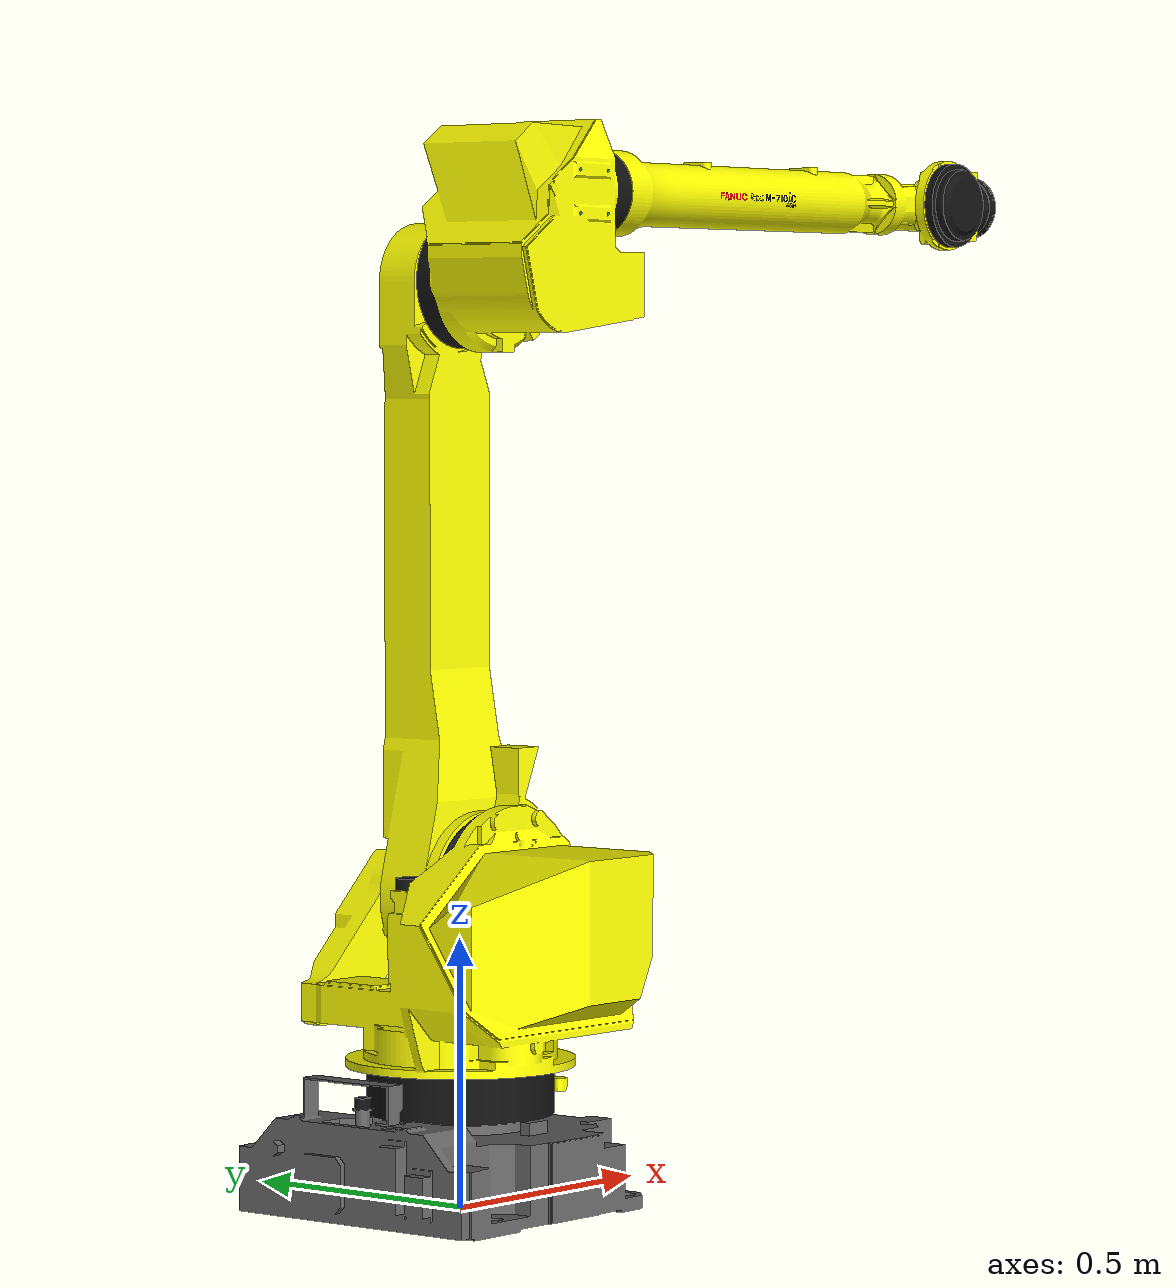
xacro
<?xml version="1.0" ?>
<robot name="m710ic_45m" xmlns:xacro="http://wiki.ros.org/xacro">
  <xacro:include
    filename="$(find fanuc_m710_description)/urdf/m710ic_45m_urdf_macro.xacro"
  />

  <link name="world" />
  <link name="ee_link" />
  <xacro:m710ic_45m parent="world" child="ee_link">
    <origin xyz="0 0 0" rpy="0 0 0" />
  </xacro:m710ic_45m>
</robot>

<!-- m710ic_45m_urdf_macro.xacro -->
<!--
SPDX-FileCopyrightText: 2026, FANUC America Corporation
SPDX-FileCopyrightText: 2026, FANUC CORPORATION
SPDX-License-Identifier: Apache-2.0
-->
<!-- URDF for M-710iC/45M -->
<robot xmlns:xacro="http://wiki.ros.org/xacro">
  <xacro:macro
    name="m710ic_45m"
    params="prefix=''
            parent
            *origin
            child"
  >

    <xacro:property name="j1_lower_limit" value="${radians(-180)}" />
    <xacro:property name="j2_lower_limit" value="${radians(-90)}" />
    <xacro:property name="j3_lower_limit" value="${radians(-80.5)}" />
    <xacro:property name="j4_lower_limit" value="${radians(-400)}" />
    <xacro:property name="j5_lower_limit" value="${radians(-125)}" />
    <xacro:property name="j6_lower_limit" value="${radians(-400)}" />

    <xacro:property name="j1_upper_limit" value="${radians(180)}" />
    <xacro:property name="j2_upper_limit" value="${radians(135)}" />
    <xacro:property name="j3_upper_limit" value="${radians(205)}" />
    <xacro:property name="j4_upper_limit" value="${radians(400)}" />
    <xacro:property name="j5_upper_limit" value="${radians(125)}" />
    <xacro:property name="j6_upper_limit" value="${radians(400)}" />

    <xacro:property name="j1_effort_limit" value="9000" />
    <xacro:property name="j2_effort_limit" value="9000" />
    <xacro:property name="j3_effort_limit" value="4000" />
    <xacro:property name="j4_effort_limit" value="800" />
    <xacro:property name="j5_effort_limit" value="900" />
    <xacro:property name="j6_effort_limit" value="700" />

    <xacro:property name="j1_velocity_limit" value="${radians(180)}" />
    <xacro:property name="j2_velocity_limit" value="${radians(180)}" />
    <xacro:property name="j3_velocity_limit" value="${radians(180)}" />
    <xacro:property name="j4_velocity_limit" value="${radians(250)}" />
    <xacro:property name="j5_velocity_limit" value="${radians(250)}" />
    <xacro:property name="j6_velocity_limit" value="${radians(360)}" />

    <!-- links -->
    <link name="${prefix}base_link">
      <visual>
        <origin xyz="0 0 0" rpy="0 0 0" />
        <geometry>
          <mesh
            filename="package://fanuc_m710_description/meshes/m710ic_45m/visual/base.dae"
          />
        </geometry>
      </visual>
      <collision>
        <origin xyz="0 0 0" rpy="0 0 0" />
        <geometry>
          <mesh
            filename="package://fanuc_m710_description/meshes/m710ic_45m/collision/base.stl"
          />
        </geometry>
      </collision>
      <inertial>
        <mass value=" 128" />
        <origin xyz="-.0566 -.000891  .119" />
        <inertia
          ixx=" 3.37"
          ixy="-.0143"
          ixz=" .0419"
          iyy=" 3.64"
          iyz="-.00664"
          izz=" 5.68"
        />
      </inertial>
    </link>

    <link name="${prefix}J1_link">
      <visual>
        <origin xyz="0 0 0" rpy="0 0 0" />
        <geometry>
          <mesh
            filename="package://fanuc_m710_description/meshes/m710ic_45m/visual/j1.dae"
          />
        </geometry>
      </visual>
      <collision>
        <origin xyz="0 0 0" rpy="0 0 0" />
        <geometry>
          <mesh
            filename="package://fanuc_m710_description/meshes/m710ic_45m/collision/j1.stl"
          />
        </geometry>
      </collision>
      <inertial>
        <mass value=" 192" />
        <origin xyz=" .0514 -.00698 -.104" />
        <inertia
          ixx=" 7.14"
          ixy="-.31"
          ixz="-.501"
          iyy=" 6.1"
          iyz=" .208"
          izz=" 7.66"
        />
      </inertial>
    </link>

    <link name="${prefix}J2_link">
      <visual>
        <origin xyz="0 0 0" rpy="0 0 0" />
        <geometry>
          <mesh
            filename="package://fanuc_m710_description/meshes/m710ic_45m/visual/j2.dae"
          />
        </geometry>
      </visual>
      <collision>
        <origin xyz="0 0 0" rpy="0 0 0" />
        <geometry>
          <mesh
            filename="package://fanuc_m710_description/meshes/m710ic_45m/collision/j2.stl"
          />
        </geometry>
      </collision>
      <inertial>
        <mass value=" 109" />
        <origin xyz=" .00255  .155  .462" />
        <inertia
          ixx=" 15"
          ixy=" .025"
          ixz=" .0168"
          iyy=" 15.3"
          iyz="-.483"
          izz=" .901"
        />
      </inertial>
    </link>

    <link name="${prefix}J3_link">
      <visual>
        <origin xyz="0 0 0" rpy="0 0 0" />
        <geometry>
          <mesh
            filename="package://fanuc_m710_description/meshes/m710ic_45m/visual/j3.dae"
          />
        </geometry>
      </visual>
      <collision>
        <origin xyz="0 0 0" rpy="0 0 0" />
        <geometry>
          <mesh
            filename="package://fanuc_m710_description/meshes/m710ic_45m/collision/j3.stl"
          />
        </geometry>
      </collision>
      <inertial>
        <mass value=" 87.5" />
        <origin xyz=" .0116 -.0318  .0851" />
        <inertia
          ixx=" 1.71"
          ixy="-.159"
          ixz="-.191"
          iyy=" 2.07"
          iyz="-.0869"
          izz=" 1.86"
        />
      </inertial>
    </link>

    <link name="${prefix}J4_link">
      <visual>
        <origin xyz="0 0 0" rpy="0 0 0" />
        <geometry>
          <mesh
            filename="package://fanuc_m710_description/meshes/m710ic_45m/visual/j4.dae"
          />
        </geometry>
      </visual>
      <collision>
        <origin xyz="0 0 0" rpy="0 0 0" />
        <geometry>
          <mesh
            filename="package://fanuc_m710_description/meshes/m710ic_45m/collision/j4.stl"
          />
        </geometry>
      </collision>
      <inertial>
        <mass value=" 44.7" />
        <origin xyz=" .806 -.0208  .000409" />
        <inertia
          ixx=" .165"
          ixy=" .181"
          ixz="-.00166"
          iyy=" 4.44"
          iyz="-.000577"
          izz=" 4.46"
        />
      </inertial>
    </link>

    <link name="${prefix}J5_link">
      <visual>
        <origin xyz="0 0 0" rpy="0 0 0" />
        <geometry>
          <mesh
            filename="package://fanuc_m710_description/meshes/m710ic_45m/visual/j5.dae"
          />
        </geometry>
      </visual>
      <collision>
        <origin xyz="0 0 0" rpy="0 0 0" />
        <geometry>
          <mesh
            filename="package://fanuc_m710_description/meshes/m710ic_45m/collision/j5.stl"
          />
        </geometry>
      </collision>
      <inertial>
        <mass value=" 8.95" />
        <origin xyz=" .0404  .00391 -.00000114" />
        <inertia
          ixx=" .0332"
          ixy="-.00257"
          ixz=" .000000378"
          iyy=" .0476"
          iyz="-.000000339"
          izz=" .0505"
        />
      </inertial>
    </link>

    <link name="${prefix}J6_link">
      <visual>
        <origin xyz="0 0 0" rpy="0 0 0" />
        <geometry>
          <mesh
            filename="package://fanuc_m710_description/meshes/m710ic_45m/visual/j6.dae"
          />
        </geometry>
      </visual>
      <collision>
        <origin xyz="0 0 0" rpy="0 0 0" />
        <geometry>
          <mesh
            filename="package://fanuc_m710_description/meshes/m710ic_45m/collision/j6.stl"
          />
        </geometry>
      </collision>
      <inertial>
        <mass value=" .463" />
        <origin xyz=" .165 -4.6E-18 -1.29E-18" />
        <inertia
          ixx=" .000898"
          ixy="-1.24E-18"
          ixz="-1.44E-19"
          iyy=" .000465"
          iyz=" .0000000000662"
          izz=" .000465"
        />
      </inertial>
    </link>

    <!-- joints -->
    <joint name="${prefix}J1" type="revolute">
      <origin xyz=" 0  0  .565" rpy="0 0 0" />
      <parent link="${prefix}base_link" />
      <child link="${prefix}J1_link" />
      <axis xyz=" 0  0  1" />
      <limit
        lower="${j1_lower_limit}"
        upper="${j1_upper_limit}"
        effort="${j1_effort_limit}"
        velocity="${j1_velocity_limit}"
      />
    </joint>

    <joint name="${prefix}J2" type="revolute">
      <origin xyz=" .15  0  0" rpy="0 0 0" />
      <parent link="${prefix}J1_link" />
      <child link="${prefix}J2_link" />
      <axis xyz=" 0  1  0" />
      <limit
        lower="${j2_lower_limit}"
        upper="${j2_upper_limit}"
        effort="${j2_effort_limit}"
        velocity="${j2_velocity_limit}"
      />
    </joint>

    <joint name="${prefix}J3" type="revolute">
      <origin xyz=" 0  0  1.15" rpy="0 0 0" />
      <parent link="${prefix}J2_link" />
      <child link="${prefix}J3_link" />
      <axis xyz=" 0 -1  0" />
      <limit
        lower="${j3_lower_limit}"
        upper="${j3_upper_limit}"
        effort="${j3_effort_limit}"
        velocity="${j3_velocity_limit}"
      />
    </joint>

    <joint name="${prefix}J4" type="revolute">
      <origin xyz=" 0  0  .17" rpy="0 0 0" />
      <parent link="${prefix}J3_link" />
      <child link="${prefix}J4_link" />
      <axis xyz="-1  0  0" />
      <limit
        lower="${j4_lower_limit}"
        upper="${j4_upper_limit}"
        effort="${j4_effort_limit}"
        velocity="${j4_velocity_limit}"
      />
    </joint>

    <joint name="${prefix}J5" type="revolute">
      <origin xyz=" 1.295  0  0" rpy="0 0 0" />
      <parent link="${prefix}J4_link" />
      <child link="${prefix}J5_link" />
      <axis xyz=" 0 -1  0" />
      <limit
        lower="${j5_lower_limit}"
        upper="${j5_upper_limit}"
        effort="${j5_effort_limit}"
        velocity="${j5_velocity_limit}"
      />
    </joint>

    <joint name="${prefix}J6" type="revolute">
      <origin xyz=" 0  0  0" rpy="0 0 0" />
      <parent link="${prefix}J5_link" />
      <child link="${prefix}J6_link" />
      <axis xyz="-1  0  0" />
      <limit
        lower="${j6_lower_limit}"
        upper="${j6_upper_limit}"
        effort="${j6_effort_limit}"
        velocity="${j6_velocity_limit}"
      />
    </joint>

    <!-- world coords -->
    <link name="${prefix}wbase" />
    <joint name="${prefix}base_link-wbase" type="fixed">
      <origin xyz=" 0  0  .565" rpy="0 0 0" />
      <parent link="${prefix}base_link" />
      <child link="${prefix}wbase" />
    </joint>

    <!-- flange coords -->
    <link name="${prefix}flange" />
    <joint name="${prefix}J6-flange" type="fixed">
      <origin xyz=" .175  0  0" rpy="0 0 0" />
      <parent link="${prefix}J6_link" />
      <child link="${prefix}flange" />
    </joint>

    <!-- FANUC flange coords -->
    <link name="${prefix}fanuc_flange" />
    <joint name="${prefix}flange-fanuc_flange" type="fixed">
      <origin xyz="0 0 0" rpy="${radians( 180)} ${radians(-90)} ${radians( 0)}" />
      <parent link="${prefix}flange" />
      <child link="${prefix}fanuc_flange" />
    </joint>

    <!-- Attach to parent -->
    <joint name="${prefix}base_joint" type="fixed">
      <xacro:insert_block name="origin" />
      <parent link="${parent}" />
      <child link="${prefix}base_link" />
    </joint>

    <!-- Attach child -->
    <joint name="${prefix}child_joint" type="fixed">
      <origin xyz="0 0 0" rpy="0 0 0" />
      <parent link="${prefix}flange" />
      <child link="${child}" />
    </joint>
  </xacro:macro>
</robot>
